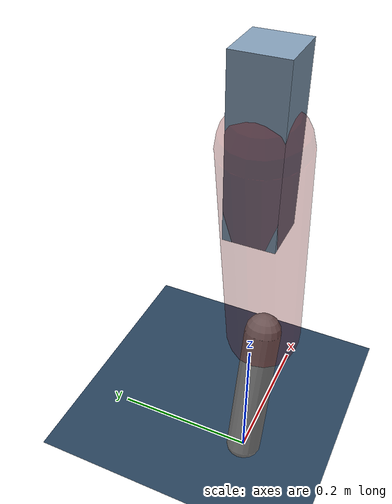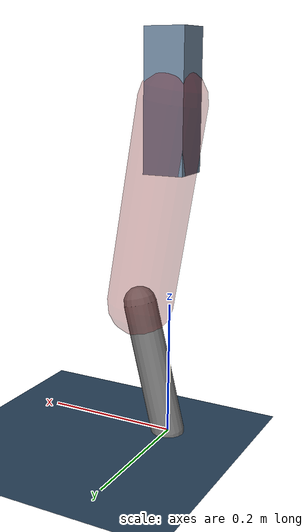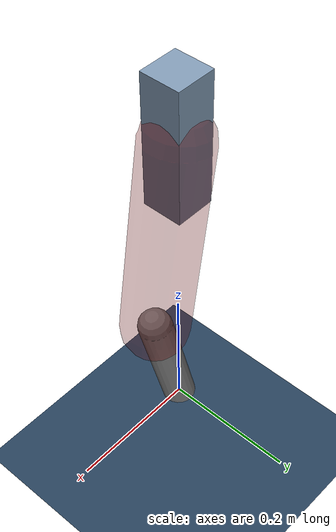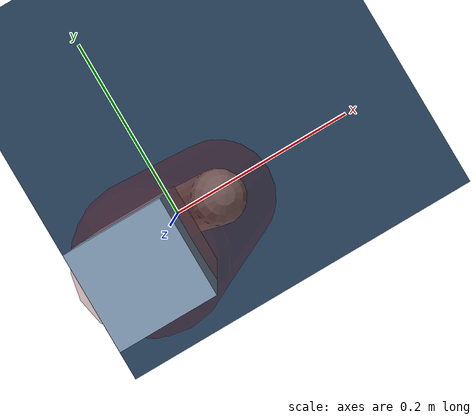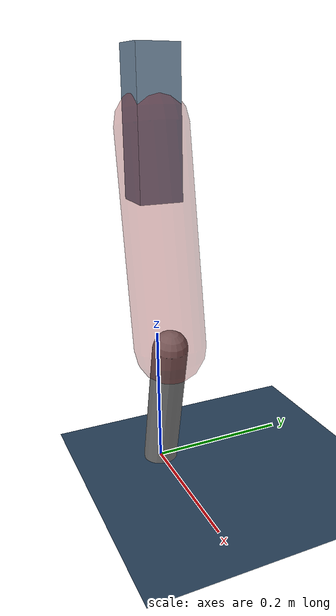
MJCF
<mujoco model="Hopper2D">
	<compiler inertiafromgeom="true" angle="radian" />
	<option timestep="0.001" integrator="implicit" cone="elliptic" solver="Newton" tolerance="1e-10" />

	<default>
		<geom contype="1" conaffinity="1" condim="3" friction="2 0.005 0.0001" solref="0.005 1" />
		<joint limited="true" damping="0.1" />
	</default>

	<asset>
		<texture name="skybox" type="skybox" builtin="gradient" rgb1=".4 .6 .8" rgb2="0 0 0" width="800" height="800" />
		<texture name="grid" type="2d" builtin="checker" rgb1=".1 .2 .3" rgb2=".2 .3 .4" width="300" height="300" mark="edge" markrgb=".2 .3 .4" />
		<material name="ground" texture="grid" texrepeat="1 1" texuniform="true" reflectance="0.1" />
		<material name="leg" rgba="0.5 0.6 0.7 1" />
	</asset>

	<worldbody>

		<geom name="floor" type="plane" size="5 5 0.25" material="ground" />

		<light directional="false" diffuse="0.8 0.8 0.8" specular="0.3 0.3 0.3" pos="0 0 2" dir="0 0 -1" />
		<light mode="targetbodycom" target="base" directional="false" diffuse="0.8 0.8 0.8" specular="0.3 0.3 0.3" pos="0 0 2" dir="0 0 -1" />

		<camera name="fixed" pos="0 -2 1" xyaxes="1 0 0 0 0 1" />
		<camera name="tracking" mode="trackcom" pos="0 -3 1" />

		<body name="root" pos="0 0 0.49360293400864086">
			<joint name="slide_x" type="slide" axis="1 0 0" range="-100 100" />
			<joint name="slide_z" type="slide" axis="0 0 1" range="0 10" />

			<body name="base" pos="0 0 0">
				<geom name="torso" type="box" size="0.03 0.03 0.1" mass="2.386" material="leg" />

				<body name="link1" pos="0 0 0" euler="0 1.4078682118379569 0">
					<joint type="hinge" axis="0 -1 0" pos="0 0 0" name="hinge1" limited="true" range="-3.14 3.14" stiffness="0" damping="0.1" />
					<geom name="thigh" type="capsule" fromto="0 0 0 0.30150738198839677 0 0" size="0.05" rgba="0.5 0 0 0.3" mass="0.9927699313686713" />

					<body name="link2" pos="0.30150738198839677 0 0" euler="0 0.40735397481297986 0">
						<joint type="hinge" axis="0 -1 0" pos="0 0 0" name="hinge2" limited="true" range="-3.14 3.14" stiffness="0" damping="0.1" />
						<geom name="shank" type="capsule" fromto="0 0 0 0.20209555202024407 0 0" size="0.025" mass="0.40267644161619526" />

					</body>
				</body>
			</body>
		</body>
	</worldbody>

	<actuator>
		<motor name="torque1" joint="hinge1" ctrlrange="-57.97972870797653 57.97972870797653" ctrllimited="true" gear="1" />
		<motor name="torque2" joint="hinge2" ctrlrange="-81.79845686564374 81.79845686564374" ctrllimited="true" gear="1" />
	</actuator>
</mujoco>
